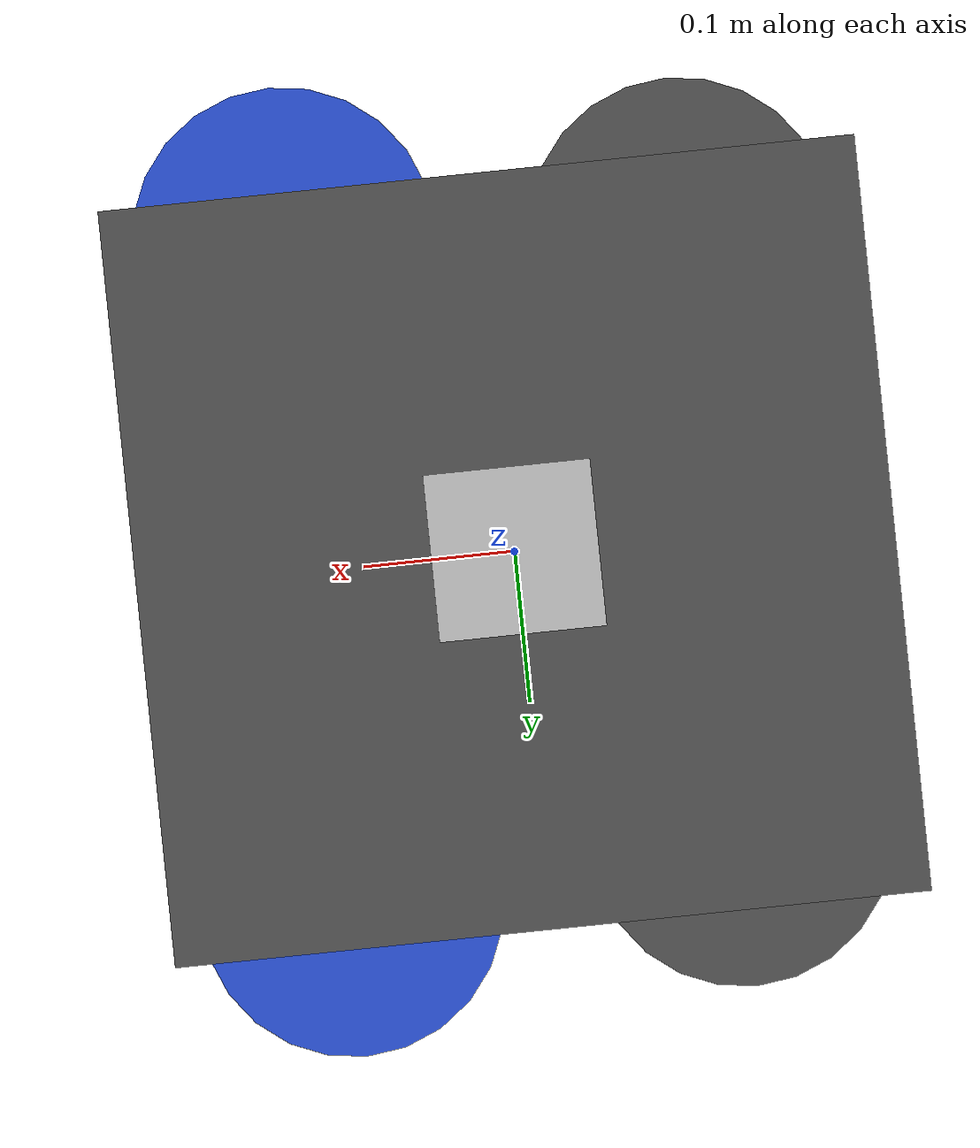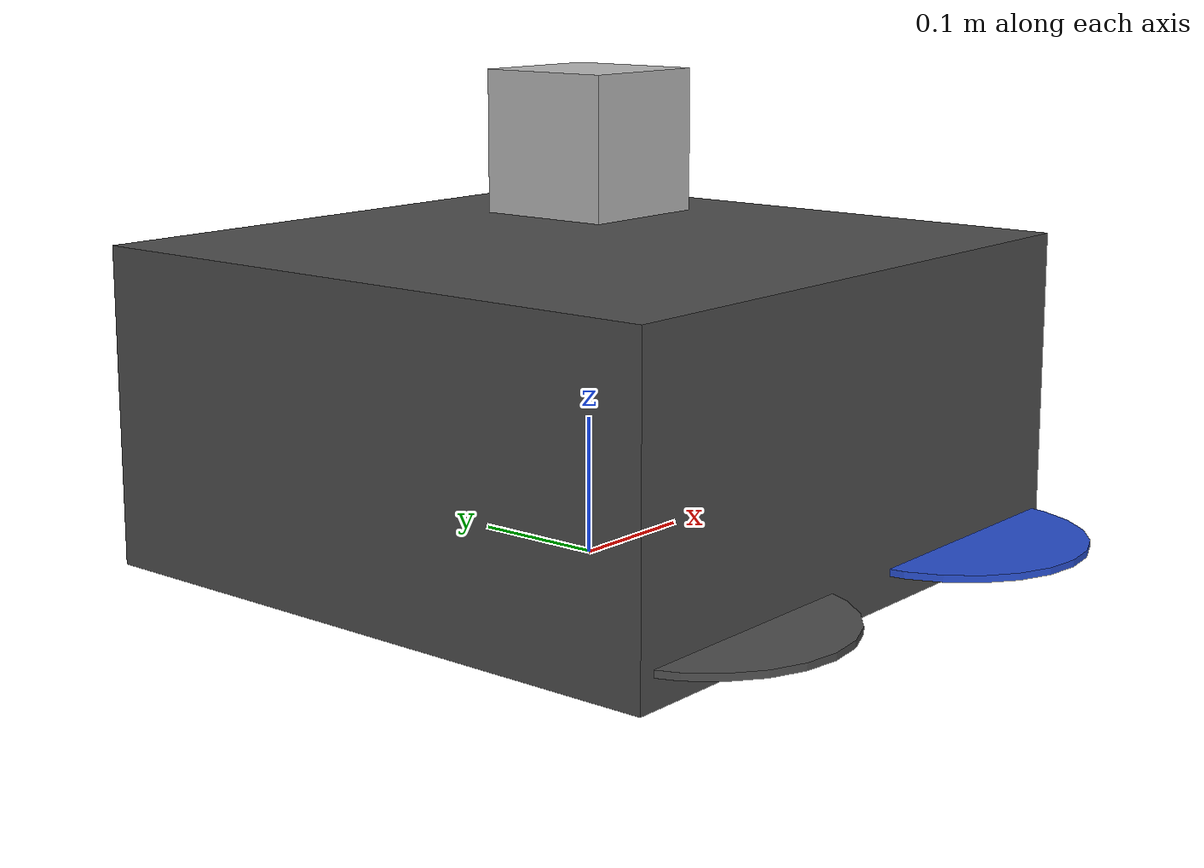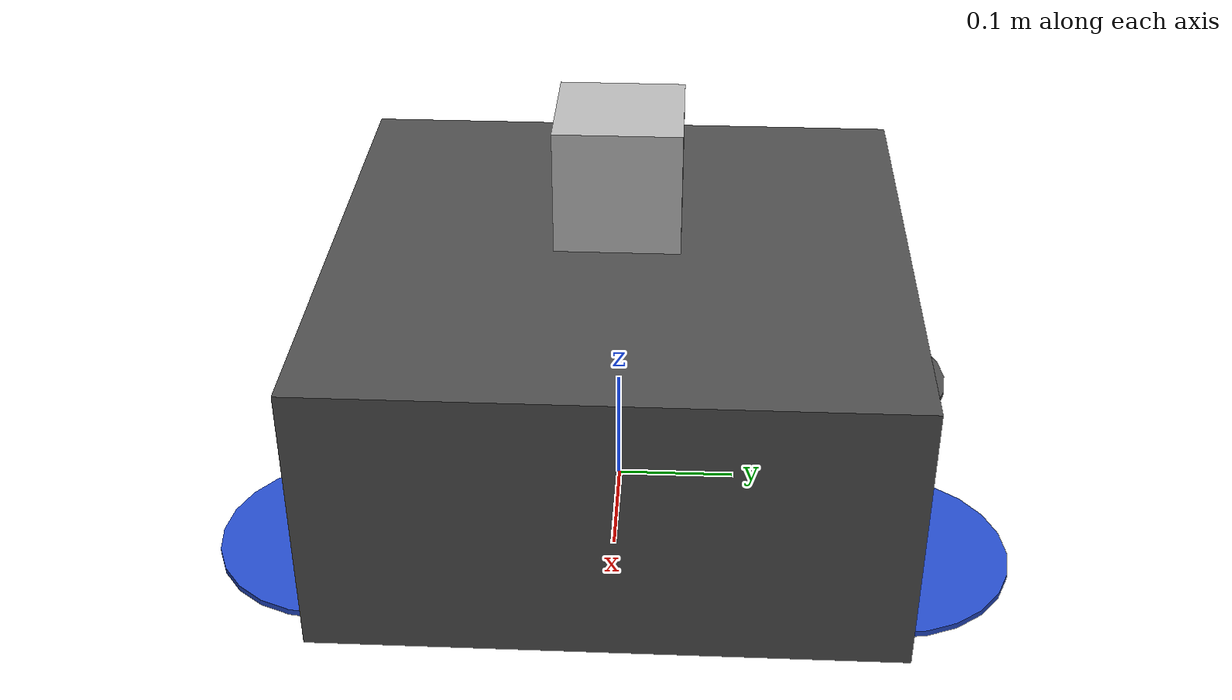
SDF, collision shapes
<?xml version='1.0'?>
<sdf version="1.6">
  <model name="iris_sensors">
    <include>
      <uri>model://iris_with_standoffs</uri>
    </include>

    <!--Add UAV rotor links & joints-->
    <link name='rotor_0'>
      <pose>0.13 -0.22 0.023 0 -0 0</pose>
      <inertial>
        <pose>0 0 0 0 -0 0</pose>
        <mass>0.025</mass>
        <inertia>
          <ixx>9.75e-06</ixx>
          <ixy>0</ixy>
          <ixz>0</ixz>
          <iyy>0.000166704</iyy>
          <iyz>0</iyz>
          <izz>0.000167604</izz>
        </inertia>
      </inertial>
      <collision name='rotor_0_collision'>
        <pose>0 0 0 0 -0 0</pose>
        <geometry>
          <cylinder>
            <length>0.005</length>
            <radius>0.1</radius>
          </cylinder>
        </geometry>
        <surface>
          <contact>
            <ode/>
          </contact>
          <friction>
            <ode/>
          </friction>
        </surface>
      </collision>
      <visual name='rotor_0_visual'>
        <pose>0 0 0 0 -0 0</pose>
        <geometry>
          <mesh>
            <scale>1 1 1</scale>
            <uri>package://uav_gazebo/models/iris_sensors/meshes/iris_prop_ccw.dae</uri>
          </mesh>
        </geometry>
        <material>
          <script>
            <name>Gazebo/Blue</name>
            <uri>__default__</uri>
          </script>
        </material>
      </visual>
      <gravity>1</gravity>
      <velocity_decay/>
      <self_collide>0</self_collide>
    </link>
    <joint name='rotor_0_joint' type='revolute'>
      <child>rotor_0</child>
      <parent>iris::base_link</parent>
      <axis>
        <xyz>0 0 1</xyz>
        <limit>
          <lower>-1e+16</lower>
          <upper>1e+16</upper>
        </limit>
        <dynamics>
          <damping>0.004</damping>
        </dynamics>
        <use_parent_model_frame>1</use_parent_model_frame>
      </axis>
      <physics>
        <ode>
          <implicit_spring_damper>1</implicit_spring_damper>
        </ode>
      </physics>
    </joint>
    <link name='rotor_1'>
      <pose>-0.13 0.2 0.023 0 -0 0</pose>
      <inertial>
        <pose>0 0 0 0 -0 0</pose>
        <mass>0.025</mass>
        <inertia>
          <ixx>9.75e-06</ixx>
          <ixy>0</ixy>
          <ixz>0</ixz>
          <iyy>0.000166704</iyy>
          <iyz>0</iyz>
          <izz>0.000167604</izz>
        </inertia>
      </inertial>
      <collision name='rotor_1_collision'>
        <pose>0 0 0 0 -0 0</pose>
        <geometry>
          <cylinder>
            <length>0.005</length>
            <radius>0.1</radius>
          </cylinder>
        </geometry>
        <surface>
          <contact>
            <ode/>
          </contact>
          <friction>
            <ode/>
          </friction>
        </surface>
      </collision>
      <visual name='rotor_1_visual'>
        <pose>0 0 0 0 -0 0</pose>
        <geometry>
          <mesh>
            <scale>1 1 1</scale>
            <uri>package://uav_gazebo/models/iris_sensors/meshes/iris_prop_ccw.dae</uri>
          </mesh>
        </geometry>
        <material>
          <script>
            <name>Gazebo/DarkGrey</name>
            <uri>__default__</uri>
          </script>
        </material>
      </visual>
      <gravity>1</gravity>
      <velocity_decay/>
      <self_collide>0</self_collide>
    </link>
    <joint name='rotor_1_joint' type='revolute'>
      <child>rotor_1</child>
      <parent>iris::base_link</parent>
      <axis>
        <xyz>0 0 1</xyz>
        <limit>
          <lower>-1e+16</lower>
          <upper>1e+16</upper>
        </limit>
        <dynamics>
          <damping>0.004</damping>
        </dynamics>
        <use_parent_model_frame>1</use_parent_model_frame>
      </axis>
      <physics>
        <ode>
          <implicit_spring_damper>1</implicit_spring_damper>
        </ode>
      </physics>
    </joint>
    <link name='rotor_2'>
      <pose>0.13 0.22 0.023 0 -0 0</pose>
      <inertial>
        <pose>0 0 0 0 -0 0</pose>
        <mass>0.025</mass>
        <inertia>
          <ixx>9.75e-06</ixx>
          <ixy>0</ixy>
          <ixz>0</ixz>
          <iyy>0.000166704</iyy>
          <iyz>0</iyz>
          <izz>0.000167604</izz>
        </inertia>
      </inertial>
      <collision name='rotor_2_collision'>
        <pose>0 0 0 0 -0 0</pose>
        <geometry>
          <cylinder>
            <length>0.005</length>
            <radius>0.1</radius>
          </cylinder>
        </geometry>
        <surface>
          <contact>
            <ode/>
          </contact>
          <friction>
            <ode/>
          </friction>
        </surface>
      </collision>
      <visual name='rotor_2_visual'>
        <pose>0 0 0 0 -0 0</pose>
        <geometry>
          <mesh>
            <scale>1 1 1</scale>
            <uri>package://uav_gazebo/models/iris_sensors/meshes/iris_prop_cw.dae</uri>
          </mesh>
        </geometry>
        <material>
          <script>
            <name>Gazebo/Blue</name>
            <uri>__default__</uri>
          </script>
        </material>
      </visual>
      <gravity>1</gravity>
      <velocity_decay/>
      <self_collide>0</self_collide>
    </link>
    <joint name='rotor_2_joint' type='revolute'>
      <child>rotor_2</child>
      <parent>iris::base_link</parent>
      <axis>
        <xyz>0 0 1</xyz>
        <limit>
          <lower>-1e+16</lower>
          <upper>1e+16</upper>
        </limit>
        <dynamics>
          <damping>0.004</damping>
        </dynamics>
        <use_parent_model_frame>1</use_parent_model_frame>
      </axis>
      <physics>
        <ode>
          <implicit_spring_damper>1</implicit_spring_damper>
        </ode>
      </physics>
    </joint>
    <link name='rotor_3'>
      <pose>-0.13 -0.2 0.023 0 -0 0</pose>
      <inertial>
        <pose>0 0 0 0 -0 0</pose>
        <mass>0.025</mass>
        <inertia>
          <ixx>9.75e-06</ixx>
          <ixy>0</ixy>
          <ixz>0</ixz>
          <iyy>0.000166704</iyy>
          <iyz>0</iyz>
          <izz>0.000167604</izz>
        </inertia>
      </inertial>
      <collision name='rotor_3_collision'>
        <pose>0 0 0 0 -0 0</pose>
        <geometry>
          <cylinder>
            <length>0.005</length>
            <radius>0.1</radius>
          </cylinder>
        </geometry>
        <surface>
          <contact>
            <ode/>
          </contact>
          <friction>
            <ode/>
          </friction>
        </surface>
      </collision>
      <visual name='rotor_3_visual'>
        <pose>0 0 0 0 -0 0</pose>
        <geometry>
          <mesh>
            <scale>1 1 1</scale>
            <uri>package://uav_gazebo/models/iris_sensors/meshes/iris_prop_cw.dae</uri>
          </mesh>
        </geometry>
        <material>
          <script>
            <name>Gazebo/DarkGrey</name>
            <uri>__default__</uri>
          </script>
        </material>
      </visual>
      <gravity>1</gravity>
      <velocity_decay/>
      <self_collide>0</self_collide>
    </link>
    <joint name='rotor_3_joint' type='revolute'>
      <child>rotor_3</child>
      <parent>iris::base_link</parent>
      <axis>
        <xyz>0 0 1</xyz>
        <limit>
          <lower>-1e+16</lower>
          <upper>1e+16</upper>
        </limit>
        <dynamics>
          <damping>0.004</damping>
        </dynamics>
        <use_parent_model_frame>1</use_parent_model_frame>
      </axis>
      <physics>
        <ode>
          <implicit_spring_damper>1</implicit_spring_damper>
        </ode>
      </physics>
    </joint>

    <!--Add sensors-->
    <!--Lidar-->
    <link name="hokuyo_link">
      <pose>0 0 0 0 0 0</pose>
      <collision name="collision">
        <pose>0 0 0.3 0 0 0</pose>
        <geometry>
          <box>
            <size>0.1 0.1 0.1</size>
          </box>
        </geometry>
      </collision>
      <visual name="visual">
        <pose>0 0 0.27 0 0 0</pose>
        <geometry>
          <mesh>
            <uri>model://hokuyo/meshes/hokuyo.dae</uri>
          </mesh>
        </geometry>
      </visual>
      <inertial>
        <mass>0.016</mass>
        <inertia>
            <ixx>0.0001</ixx>
            <ixy>0</ixy>
            <ixz>0</ixz>
            <iyy>0.0001</iyy>
            <iyz>0</iyz>
            <izz>0.0001</izz>
            <!-- low intertia necessary to avoid not disturb the drone -->
        </inertia>
      </inertial>

      <sensor type="ray" name="laser">
        <pose>0 0 0.3 0 0 1.57</pose>
        <visualize>true</visualize>
        <update_rate>10</update_rate>
        <ray>
          <scan>
            <horizontal>
              <samples>360</samples>
              <resolution>1</resolution>
              <min_angle>-3.141593</min_angle>
              <max_angle>3.141593</max_angle>
            </horizontal>
          </scan>
          <range>
            <min>0.1</min>
            <max>30</max>
            <resolution>0.1</resolution>
          </range>
        </ray>
        <plugin name="lidar_plugin" filename="libgazebo_ros_ray_sensor.so">
          <ros>
            <!-- Configure namespace and remap to publish to /scan/LaserScan -->
            <remapping>~/out:=scan</remapping>
          </ros>
          <output_type>sensor_msgs/LaserScan</output_type>
          <topicName>/spur/laser/scan</topicName>
          <frameName>/hokuyo_link</frameName>
        </plugin>
      </sensor>
    </link>

    <!--Imu-->
    <link name='imu_link'>
      <inertial>
        <pose>0 0 0 0 0 0</pose>
        <mass>0.15</mass>
        <inertia>
          <ixx>0.00001</ixx>
          <ixy>0</ixy>
          <ixz>0</ixz>
          <iyy>0.00002</iyy>
          <iyz>0</iyz>
          <izz>0.00002</izz>
        </inertia>
      </inertial>
      <sensor name="imu_sensor" type="imu">
        <pose>0 0 0 3.141593 0 0</pose>
        <always_on>1</always_on>
        <update_rate>200.0</update_rate>
        <imu>
          <angular_velocity>
            <x>
              <noise type="gaussian">
                <mean>0.0</mean>
                <stddev>2e-4</stddev>
              </noise>
            </x>
            <y>
              <noise type="gaussian">
                <mean>0.0</mean>
                <stddev>2e-4</stddev>
              </noise>
            </y>
            <z>
              <noise type="gaussian">
                <mean>0.0</mean>
                <stddev>2e-4</stddev>
              </noise>
            </z>
          </angular_velocity>
          <linear_acceleration>
            <x>
              <noise type="gaussian">
                <mean>0.0</mean>
                <stddev>1.7e-2</stddev>
              </noise>
            </x>
            <y>
              <noise type="gaussian">
                <mean>0.0</mean>
                <stddev>1.7e-2</stddev>
              </noise>
            </y>
            <z>
              <noise type="gaussian">
                <mean>0.0</mean>
                <stddev>1.7e-2</stddev>
              </noise>
            </z>
          </linear_acceleration>
        </imu>
        <plugin name="imu_plugin" filename="libgazebo_ros_imu_sensor.so">
          <ros>
            <!-- publish to /imu -->
            <remapping>~/out:=imu</remapping>
          </ros>
          <frameName>imu_link</frameName>
          <initialOrientationAsReference>false</initialOrientationAsReference>
        </plugin>
      </sensor>
    </link>

    <!--Camera-->
    <link name="realsense_link">
      <pose>0 0 -0.0025 0 0 0</pose>
      <visual name="realsense_link_visual">
        <pose>0 0 0.125 0 1.5707 0</pose>
        <geometry>
          <mesh>
            <uri>package://uav_gazebo/models/iris_sensors/meshes/d435.dae</uri>
          </mesh>
        </geometry>
      </visual>

      <collision name="realsense_link_collision">
        <pose>0 0 0 -1.57 0 -1.57</pose>
        <geometry>
          <box>
            <size>0.02505 0.090 0.025</size>
          </box>
        </geometry>
      </collision>

      <inertial>
        <pose>0 0 0 0 0 0</pose>
        <inertia>
          <ixx>0.001</ixx>
          <ixy>0.000</ixy>
          <ixz>0.000</ixz>
          <iyy>0.001</iyy>
          <iyz>0.000</iyz>
          <izz>0.001</izz>
        </inertia>
        <mass>0.564</mass>
      </inertial>

      <sensor name="cameradepth" type="depth">
        <pose>0 0 0.125 0 0 0</pose>
        <camera name="camera">
          <horizontal_fov>1.57</horizontal_fov>
          <image>
            <width>1280</width>
            <height>720</height>
          </image>
          <clip>
            <near>0.1</near>
            <far>100</far>
          </clip>
          <noise>
            <type>gaussian</type>
            <mean>0.0</mean>
            <stddev>0.100</stddev>
          </noise>
        </camera>
        <always_on>1</always_on>
        <update_rate>30</update_rate>
        <visualize>0</visualize>
      </sensor>

      <sensor name="cameracolor" type="camera">
        <pose>0 0 0.125 0 0 0</pose>
        <camera name="camera">
          <horizontal_fov>1.57</horizontal_fov>
          <image>
            <width>1280</width>
            <height>720</height>
            <format>RGB_INT8</format>
          </image>
          <clip>
            <near>0.1</near>
            <far>100</far>
          </clip>
          <noise>
            <type>gaussian</type>
            <mean>0.0</mean>
            <stddev>0.007</stddev>
          </noise>
        </camera>
        <always_on>1</always_on>
        <update_rate>30</update_rate>
        <visualize>1</visualize>
      </sensor>

      <sensor name="cameraired1" type="camera">
        <pose>0 0 0.125 0 0 0</pose>
        <camera name="camera">
          <horizontal_fov>1.57</horizontal_fov>
          <image>
            <width>1280</width>
            <height>720</height>
            <format>L_INT8</format>
          </image>
          <clip>
            <near>0.1</near>
            <far>100</far>
          </clip>
          <noise>
            <type>gaussian</type>
            <mean>0.0</mean>
            <stddev>0.05</stddev>
          </noise>
        </camera>
        <always_on>1</always_on>
        <update_rate>1</update_rate>
        <visualize>0</visualize>
      </sensor>

      <sensor name="cameraired2" type="camera">
        <pose>0 0 0.125 0 0 0</pose>
        <camera name="camera">
          <horizontal_fov>1.57</horizontal_fov>
          <image>
            <width>1280</width>
            <height>720</height>
            <format>L_INT8</format>
          </image>
          <clip>
            <near>0.1</near>
            <far>100</far>
          </clip>
          <noise>
            <type>gaussian</type>
            <mean>0.0</mean>
            <stddev>0.05</stddev>
          </noise>
        </camera>
        <always_on>1</always_on>
        <update_rate>1</update_rate>
        <visualize>0</visualize>
      </sensor>
    </link>

    <!--joints-->
    <joint name="hokuyo_joint" type="fixed">
      <pose>0 0 0 0 0 0</pose>
      <parent>iris::base_link</parent>
      <child>hokuyo_link</child>
    </joint>

    <joint name='imu_joint' type='fixed'>
      <child>imu_link</child>
      <parent>iris::base_link</parent>
      <axis>
        <xyz>0 0 1</xyz>
        <limit>
          <lower>0</lower>
          <upper>0</upper>
          <effort>0</effort>
          <velocity>0</velocity>
        </limit>
      </axis>
    </joint>

    <joint name="realsense_joint" type="fixed">
      <child>realsense_link</child>
      <parent>iris::base_link</parent>
      <axis>
        <xyz>0 0 1</xyz>
        <limit>
          <upper>0</upper>
          <lower>0</lower>
        </limit>
      </axis>
    </joint>

    <!-- plugins -->
    <plugin name="rotor_0_blade_1" filename="libLiftDragPlugin.so">
      <a0>0.3</a0>
      <alpha_stall>1.4</alpha_stall>
      <cla>4.2500</cla>
      <cda>0.10</cda>
      <cma>0.00</cma>
      <cla_stall>-0.025</cla_stall>
      <cda_stall>0.0</cda_stall>
      <cma_stall>0.0</cma_stall>
      <area>0.002</area>
      <air_density>1.2041</air_density>
      <cp>0.084 0 0</cp>
      <forward>0 1 0</forward>
      <upward>0 0 1</upward>
      <link_name>iris::rotor_0</link_name>
    </plugin>

    <plugin name="rotor_0_blade_2" filename="libLiftDragPlugin.so">
      <a0>0.3</a0>
      <alpha_stall>1.4</alpha_stall>
      <cla>4.2500</cla>
      <cda>0.10</cda>
      <cma>0.00</cma>
      <cla_stall>-0.025</cla_stall>
      <cda_stall>0.0</cda_stall>
      <cma_stall>0.0</cma_stall>
      <area>0.002</area>
      <air_density>1.2041</air_density>
      <cp>-0.084 0 0</cp>
      <forward>0 -1 0</forward>
      <upward>0 0 1</upward>
      <link_name>iris::rotor_0</link_name>
    </plugin>

    <plugin name="rotor_1_blade_1" filename="libLiftDragPlugin.so">
      <a0>0.3</a0>
      <alpha_stall>1.4</alpha_stall>
      <cla>4.2500</cla>
      <cda>0.10</cda>
      <cma>0.00</cma>
      <cla_stall>-0.025</cla_stall>
      <cda_stall>0.0</cda_stall>
      <cma_stall>0.0</cma_stall>
      <area>0.002</area>
      <air_density>1.2041</air_density>
      <cp>0.084 0 0</cp>
      <forward>0 1 0</forward>
      <upward>0 0 1</upward>
      <link_name>iris::rotor_1</link_name>
    </plugin>

    <plugin name="rotor_1_blade_2" filename="libLiftDragPlugin.so">
      <a0>0.3</a0>
      <alpha_stall>1.4</alpha_stall>
      <cla>4.2500</cla>
      <cda>0.10</cda>
      <cma>0.00</cma>
      <cla_stall>-0.025</cla_stall>
      <cda_stall>0.0</cda_stall>
      <cma_stall>0.0</cma_stall>
      <area>0.002</area>
      <air_density>1.2041</air_density>
      <cp>-0.084 0 0</cp>
      <forward>0 -1 0</forward>
      <upward>0 0 1</upward>
      <link_name>iris::rotor_1</link_name>
    </plugin>

    <plugin name="rotor_2_blade_1" filename="libLiftDragPlugin.so">
      <a0>0.3</a0>
      <alpha_stall>1.4</alpha_stall>
      <cla>4.2500</cla>
      <cda>0.10</cda>
      <cma>0.00</cma>
      <cla_stall>-0.025</cla_stall>
      <cda_stall>0.0</cda_stall>
      <cma_stall>0.0</cma_stall>
      <area>0.002</area>
      <air_density>1.2041</air_density>
      <cp>0.084 0 0</cp>
      <forward>0 -1 0</forward>
      <upward>0 0 1</upward>
      <link_name>iris::rotor_2</link_name>
    </plugin>

    <plugin name="rotor_2_blade_2" filename="libLiftDragPlugin.so">
      <a0>0.3</a0>
      <alpha_stall>1.4</alpha_stall>
      <cla>4.2500</cla>
      <cda>0.10</cda>
      <cma>0.00</cma>
      <cla_stall>-0.025</cla_stall>
      <cda_stall>0.0</cda_stall>
      <cma_stall>0.0</cma_stall>
      <area>0.002</area>
      <air_density>1.2041</air_density>
      <cp>-0.084 0 0</cp>
      <forward>0 1 0</forward>
      <upward>0 0 1</upward>
      <link_name>iris::rotor_2</link_name>
    </plugin>

    <plugin name="rotor_3_blade_1" filename="libLiftDragPlugin.so">
      <a0>0.3</a0>
      <alpha_stall>1.4</alpha_stall>
      <cla>4.2500</cla>
      <cda>0.10</cda>
      <cma>0.00</cma>
      <cla_stall>-0.025</cla_stall>
      <cda_stall>0.0</cda_stall>
      <cma_stall>0.0</cma_stall>
      <area>0.002</area>
      <air_density>1.2041</air_density>
      <cp>0.084 0 0</cp>
      <forward>0 -1 0</forward>
      <upward>0 0 1</upward>
      <link_name>iris::rotor_3</link_name>
    </plugin>

    <plugin name="rotor_3_blade_2" filename="libLiftDragPlugin.so">
      <a0>0.3</a0>
      <alpha_stall>1.4</alpha_stall>
      <cla>4.2500</cla>
      <cda>0.10</cda>
      <cma>0.00</cma>
      <cla_stall>-0.025</cla_stall>
      <cda_stall>0.0</cda_stall>
      <cma_stall>0.0</cma_stall>
      <area>0.002</area>
      <air_density>1.2041</air_density>
      <cp>-0.084 0 0</cp>
      <forward>0 1 0</forward>
      <upward>0 0 1</upward>
      <link_name>iris::rotor_3</link_name>
    </plugin>

    <plugin name="arducopter_plugin" filename="libArduPilotPlugin.so">
      <fdm_addr>127.0.0.1</fdm_addr>
      <fdm_port_in>9002</fdm_port_in>
      <fdm_port_out>9003</fdm_port_out>
      <!--
          Require by APM :
          Only change model and gazebo from XYZ to XY-Z coordinates
      -->
      <modelXYZToAirplaneXForwardZDown>0 0 0 3.141593 0 0</modelXYZToAirplaneXForwardZDown>
      <gazeboXYZToNED>0 0 0 3.141593 0 0</gazeboXYZToNED>
      <imuName>iris::iris/imu_link::imu_sensor</imuName>
      <connectionTimeoutMaxCount>5</connectionTimeoutMaxCount>
      <control channel="0">
      <!--
          incoming control command [0, 1]
          so offset it by 0 to get [0, 1]
          and divide max target by 1.
          offset = 0
          multiplier = 838 max rpm / 1 = 838
        -->
        <type>VELOCITY</type>
        <offset>0</offset>
        <p_gain>0.20</p_gain>
        <i_gain>0</i_gain>
        <d_gain>0</d_gain>
        <i_max>0</i_max>
        <i_min>0</i_min>
        <cmd_max>2.5</cmd_max>
        <cmd_min>-2.5</cmd_min>
        <jointName>iris::rotor_0_joint</jointName>
        <multiplier>838</multiplier>
        <controlVelocitySlowdownSim>1</controlVelocitySlowdownSim>
      </control>
      <control channel="1">
        <type>VELOCITY</type>
        <offset>0</offset>
        <p_gain>0.20</p_gain>
        <i_gain>0</i_gain>
        <d_gain>0</d_gain>
        <i_max>0</i_max>
        <i_min>0</i_min>
        <cmd_max>2.5</cmd_max>
        <cmd_min>-2.5</cmd_min>
        <jointName>iris::rotor_1_joint</jointName>
        <multiplier>838</multiplier>
        <controlVelocitySlowdownSim>1</controlVelocitySlowdownSim>
      </control>
      <control channel="2">
        <type>VELOCITY</type>
        <offset>0</offset>
        <p_gain>0.20</p_gain>
        <i_gain>0</i_gain>
        <d_gain>0</d_gain>
        <i_max>0</i_max>
        <i_min>0</i_min>
        <cmd_max>2.5</cmd_max>
        <cmd_min>-2.5</cmd_min>
        <jointName>iris::rotor_2_joint</jointName>
        <multiplier>-838</multiplier>
        <controlVelocitySlowdownSim>1</controlVelocitySlowdownSim>
      </control>
      <control channel="3">
        <type>VELOCITY</type>
        <offset>0</offset>
        <p_gain>0.20</p_gain>
        <i_gain>0</i_gain>
        <d_gain>0</d_gain>
        <i_max>0</i_max>
        <i_min>0</i_min>
        <cmd_max>2.5</cmd_max>
        <cmd_min>-2.5</cmd_min>
        <jointName>iris::rotor_3_joint</jointName>
        <multiplier>-838</multiplier>
        <controlVelocitySlowdownSim>1</controlVelocitySlowdownSim>
      </control>
    </plugin>

    <plugin name="camera" filename="librealsense_gazebo_plugin.so">
      <prefix>camera</prefix>
      <depthUpdateRate>30.0</depthUpdateRate>
      <colorUpdateRate>30.0</colorUpdateRate>
      <infraredUpdateRate>1.0</infraredUpdateRate>
      <depthTopicName>aligned_depth_to_color/image_raw</depthTopicName>
      <depthCameraInfoTopicName>depth/camera_info</depthCameraInfoTopicName>
      <colorTopicName>color/image_raw</colorTopicName>
      <colorCameraInfoTopicName>color/camera_info</colorCameraInfoTopicName>
      <infrared1TopicName>infra1/image_raw</infrared1TopicName>
      <infrared1CameraInfoTopicName>infra1/camera_info</infrared1CameraInfoTopicName>
      <infrared2TopicName>infra2/image_raw</infrared2TopicName>
      <infrared2CameraInfoTopicName>infra2/camera_info</infrared2CameraInfoTopicName>
      <colorOpticalframeName>camera_color_optical_frame</colorOpticalframeName>
      <depthOpticalframeName>camera_depth_optical_frame</depthOpticalframeName>
      <infrared1OpticalframeName>camera_left_ir_optical_frame</infrared1OpticalframeName>
      <infrared2OpticalframeName>camera_right_ir_optical_frame</infrared2OpticalframeName>
      <rangeMinDepth>0.3</rangeMinDepth>
      <rangeMaxDepth>20.0</rangeMaxDepth>
      <pointCloud>true</pointCloud>
      <pointCloudTopicName>depth/color/points</pointCloudTopicName>
      <pointCloudCutoff>0.3</pointCloudCutoff>
    </plugin>

    <plugin name="uav_joint_state" filename="libgazebo_ros_joint_state_publisher.so">
      <ros>
        <remapping>~/out:=joint_states</remapping>
      </ros>
      <update_rate>30</update_rate>
      <joint_name>rotor_0_joint</joint_name>
      <joint_name>rotor_1_joint</joint_name>
      <joint_name>rotor_2_joint</joint_name>
      <joint_name>rotor_3_joint</joint_name>
    </plugin>

  </model>
</sdf>

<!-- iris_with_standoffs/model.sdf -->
<sdf version='1.5'>
  <model name='iris'>
    <pose>0 0 0.194923 0 0 0</pose>

    <link name="base_footprint"/>

    <link name='base_link'>
      <velocity_decay>
        <linear>0.0</linear>
        <angular>0.0</angular>
      </velocity_decay>
      <inertial>
        <pose>0 0 0 0 0 0</pose>
        <mass>1.5</mass>
        <inertia>
          <ixx>0.008</ixx>
          <ixy>0</ixy>
          <ixz>0</ixz>
          <iyy>0.015</iyy>
          <iyz>0</iyz>
          <izz>0.017</izz>
        </inertia>
      </inertial>
      <collision name='base_link_collision'>
        <pose>0 0 -0.08 0 0 0</pose>
        <geometry>
          <box>
            <size>0.47 0.47 0.23</size>
          </box>
        </geometry>
        <surface>
          <contact>
            <ode>
              <max_vel>100.0</max_vel>
              <min_depth>0.001</min_depth>
            </ode>
          </contact>
          <friction>
            <ode>
              <mu>100000.0</mu>
              <mu2>100000.0</mu2>
            </ode>
          </friction>
        </surface>
      </collision>
      <visual name='base_link_visual'>
        <geometry>
          <mesh>
            <uri>model://iris_with_standoffs/meshes/iris.dae</uri>
          </mesh>
        </geometry>
        <material>
          <script>
            <name>Gazebo/DarkGrey</name>
          </script>
        </material>
      </visual>

      <visual name='front_left_leg_visual'>
        <pose>0.123 0.22 -0.11 0 0 0</pose>
        <geometry>
          <cylinder>
            <radius>0.005</radius>
            <length>0.17</length>
          </cylinder>
        </geometry>
        <material>
          <script>
            <name>Gazebo/FlatBlack</name>
            <uri>file://media/materials/scripts/gazebo.material</uri>
          </script>
        </material>
      </visual>
      <visual name='front_right_leg_visual'>
        <pose>0.123 -0.22 -0.11 0 0 0</pose>
        <geometry>
          <cylinder>
            <radius>0.005</radius>
            <length>0.17</length>
          </cylinder>
        </geometry>
        <material>
          <script>
            <name>Gazebo/FlatBlack</name>
            <uri>file://media/materials/scripts/gazebo.material</uri>
          </script>
        </material>
      </visual>
      <visual name='rear_left_leg_visual'>
        <pose>-0.140 0.21 -0.11 0 0 0</pose>
        <geometry>
          <cylinder>
            <radius>0.005</radius>
            <length>0.17</length>
          </cylinder>
        </geometry>
        <material>
          <script>
            <name>Gazebo/FlatBlack</name>
            <uri>file://media/materials/scripts/gazebo.material</uri>
          </script>
        </material>
      </visual>
      <visual name='rear_right_leg_visual'>
        <pose>-0.140 -0.21 -0.11 0 0 0</pose>
        <geometry>
          <cylinder>
            <radius>0.005</radius>
            <length>0.17</length>
          </cylinder>
        </geometry>
        <material>
          <script>
            <name>Gazebo/FlatBlack</name>
            <uri>file://media/materials/scripts/gazebo.material</uri>
          </script>
        </material>
      </visual>
    </link>

    <joint name="base_joint" type="fixed">
      <parent>base_footprint</parent>
      <child>base_link</child>
      <pose>0.0 0.0 0.010 0 0 0</pose>
    </joint>

    <!--Odometry-->
    <link name='odom'>
      <pose>0 0 0 0 -0 0</pose>
      <inertial>
        <pose>0 0 0 0 -0 0</pose>
        <mass>1e-02</mass>
        <inertia>
          <ixx>0.0002</ixx>
          <ixy>0</ixy>
          <ixz>0</ixz>
          <iyy>0.0002</iyy>
          <iyz>0</iyz>
          <izz>0.0002</izz>
        </inertia>
      </inertial>
    </link>

    <joint name='odom_joint' type='fixed'>
      <child>base_footprint</child>
      <parent>odom</parent>
      <axis>
        <xyz>0 0 1</xyz>
        <limit>
          <lower>0</lower>
          <upper>0</upper>
          <effort>0</effort>
          <velocity>0</velocity>
        </limit>
      </axis>
    </joint>

    <plugin name="ground_truth" filename="libgazebo_ros_p3d.so">
      <alwaysOn>true</alwaysOn>
      <!-- Update rate in Hz, defaults to 0.0, which means as fast as possible -->
      <updateRate>50.0</updateRate>
      <!-- Name of the link within this model whose pose will be published -->
      <body_name>base_footprint</body_name>
      <topicName>odom</topicName>
      <!-- Standard deviation of the noise to be added to the reported velocities. -->
      <gaussian_noise>0.01</gaussian_noise>
      <!-- Name of another link within this model to use as a reference frame-->
      <frame_name>odom</frame_name>
      <!-- Translation offset to be added to the pose. -->
      <xyz_offset>0 0 0</xyz_offset>
      <!-- Rotation offset to be added to the pose, in Euler angles. -->
      <rpy_offset>0 0 0</rpy_offset>
    </plugin>
      <!-- ensure the sensor is active (required) -->
          <!-- publish to /gps/data -->

  </model>
</sdf>
